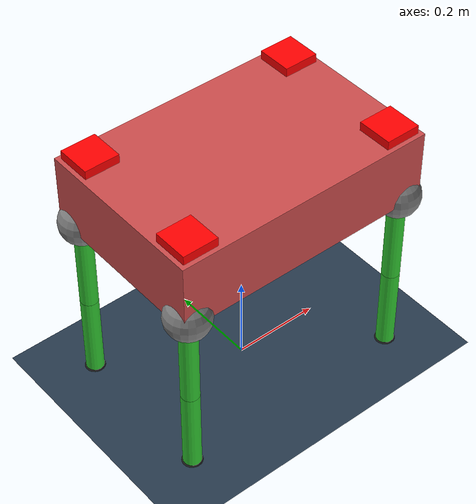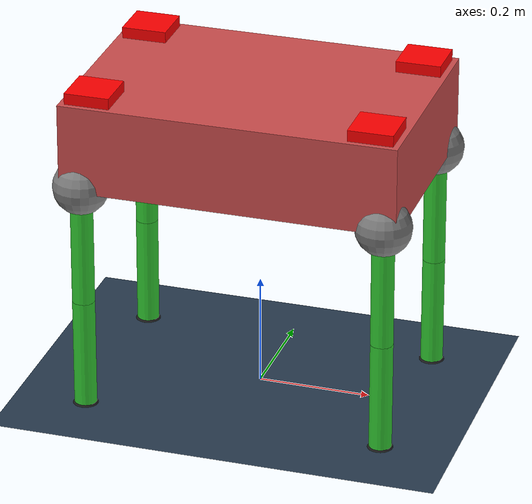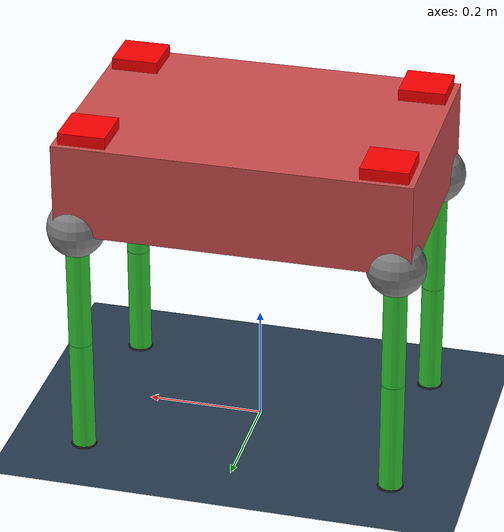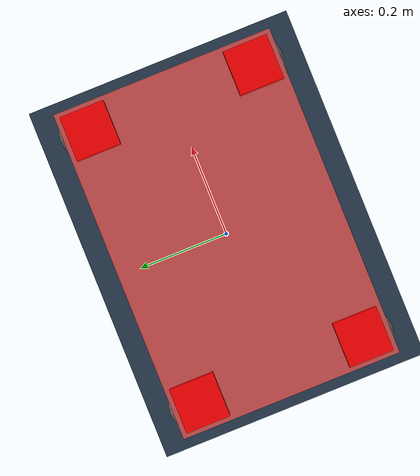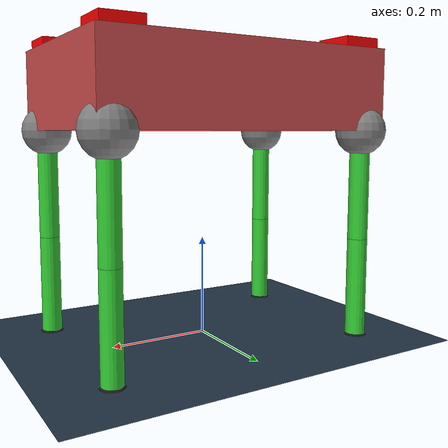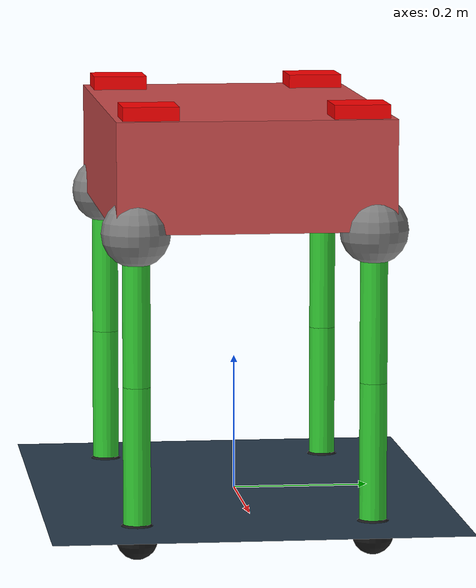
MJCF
<mujoco model="quadruped_with_thrusters">
        <compiler angle="degree" coordinate="local" inertiafromgeom="true"/>

        <option timestep="0.001" iterations="50" solver="Newton" tolerance="1e-10"/>

        <default>
            <joint damping="0.5" armature="0.01"/>
            <geom contype="1" conaffinity="1" condim="3" friction="1.0 0.005 0.0001"/>
        </default>

        <asset>
            <texture type="skybox" builtin="gradient" rgb1="0.3 0.5 0.7" rgb2="0 0 0" width="512" height="512"/>
            <texture name="texplane" type="2d" builtin="checker" rgb1="0.2 0.3 0.4" rgb2="0.1 0.15 0.2" width="512" height="512" mark="cross" markrgb="0.8 0.8 0.8"/>
            <material name="matplane" reflectance="0.3" texture="texplane" texrepeat="1 1" texuniform="true"/>
        </asset>

        <worldbody>
            <geom name="floor" pos="0 0 0" size="0 0 0.05" type="plane" material="matplane" condim="3"/>
            <light directional="true" diffuse="0.4 0.4 0.4" specular="0.1 0.1 0.1" pos="0 0 5.0" dir="0 0 -1" castshadow="false"/>
            <light directional="true" diffuse="0.6 0.6 0.6" specular="0.2 0.2 0.2" pos="0 0 4" dir="0 0 -1"/>

            <!-- ===== MAIN BODY (TORSO) ===== -->
            <body name="torso" pos="0 0 0.5">
                <freejoint name="joint_0"/>
                <inertial pos="0 0 0" mass="5.0" diaginertia="0.1 0.1 0.05"/>
                <geom name="torso_geom" type="box" size="0.3 0.2 0.08" rgba="0.8 0.3 0.3 1" mass="5.0"/>

                <!-- Thruster sites at four corners -->
                <site name="fl_thruster_site" pos="0.25 0.15 0.08" size="0.04 0.04 0.02" type="box" rgba="1 0 0 1"/>
                <site name="fr_thruster_site" pos="0.25 -0.15 0.08" size="0.04 0.04 0.02" type="box" rgba="1 0 0 1"/>
                <site name="hl_thruster_site" pos="-0.25 0.15 0.08" size="0.04 0.04 0.02" type="box" rgba="1 0 0 1"/>
                <site name="hr_thruster_site" pos="-0.25 -0.15 0.08" size="0.04 0.04 0.02" type="box" rgba="1 0 0 1"/>

                <!-- ===== FRONT LEFT LEG ===== -->
                <body name="fl_hip" pos="0.27 0.17 -0.08">
                    <joint name="fl_hip_joint" type="hinge" axis="0 0 1" range="-0.5 0.5" damping="1.0"/>
                    <geom type="sphere" size="0.05" rgba="0.5 0.5 0.5 1" mass="0.5"/>

                    <body name="fl_thigh" pos="0 0 0">
                        <joint name="fl_thigh_joint" type="hinge" axis="0 1 0" range="-120 120" damping="1.0"/>
                        <geom type="capsule" fromto="0 0 0 0 0 -0.22" size="0.02" mass="1.0" rgba="0.2 0.8 0.2 1"/>

                        <body name="fl_shank" pos="0 0 -0.22">
                            <joint name="fl_shank_joint" type="hinge" axis="0 1 0" range="-120 120" damping="1.0"/>
                            <geom type="capsule" fromto="0 0 0 0 0 -0.22" size="0.02" mass="1.0" rgba="0.2 0.8 0.2 1"/>

                            <!-- Normal foot (sphere) -->
                            <body name="fl_foot" pos="0 0 -0.22">
                                <geom name="fl_foot_geom" type="sphere" size="0.03" rgba="0.1 0.1 0.1 1" friction="1.5 0.005 0.0001"/>
                                <site name="fl_foot_site" pos="0 0 0" size="0.02"/>
                            </body>
                        </body>
                    </body>
                </body>

                <!-- ===== FRONT RIGHT LEG ===== -->
                <body name="fr_hip" pos="0.27 -0.17 -0.08">
                    <joint name="fr_hip_joint" type="hinge" axis="0 0 1" range="-0.5 0.5" damping="1.0"/>
                    <geom type="sphere" size="0.05" rgba="0.5 0.5 0.5 1" mass="0.5"/>

                    <body name="fr_thigh" pos="0 0 0">
                        <joint name="fr_thigh_joint" type="hinge" axis="0 1 0" range="-120 120" damping="1.0"/>
                        <geom type="capsule" fromto="0 0 0 0 0 -0.22" size="0.02" mass="1.0" rgba="0.2 0.8 0.2 1"/>

                        <body name="fr_shank" pos="0 0 -0.22">
                            <joint name="fr_shank_joint" type="hinge" axis="0 1 0" range="-120 120" damping="1.0"/>
                            <geom type="capsule" fromto="0 0 0 0 0 -0.22" size="0.02" mass="1.0" rgba="0.2 0.8 0.2 1"/>

                            <!-- Normal foot (sphere) -->
                            <body name="fr_foot" pos="0 0 -0.22">
                                <geom name="fr_foot_geom" type="sphere" size="0.03" rgba="0.1 0.1 0.1 1" friction="1.5 0.005 0.0001"/>
                                <site name="fr_foot_site" pos="0 0 0" size="0.02"/>
                            </body>
                        </body>
                    </body>
                </body>

                <!-- ===== HIND LEFT LEG ===== -->
                <body name="hl_hip" pos="-0.27 0.17 -0.08">
                    <joint name="hl_hip_joint" type="hinge" axis="0 0 1" range="-0.5 0.5" damping="1.0"/>
                    <geom type="sphere" size="0.05" rgba="0.5 0.5 0.5 1" mass="0.5"/>

                    <body name="hl_thigh" pos="0 0 0">
                        <joint name="hl_thigh_joint" type="hinge" axis="0 1 0" range="-120 120" damping="1.0"/>
                        <geom type="capsule" fromto="0 0 0 0 0 -0.22" size="0.02" mass="1.0" rgba="0.2 0.8 0.2 1"/>

                        <body name="hl_shank" pos="0 0 -0.22">
                            <joint name="hl_shank_joint" type="hinge" axis="0 1 0" range="-120 120" damping="1.0"/>
                            <geom type="capsule" fromto="0 0 0 0 0 -0.22" size="0.02" mass="1.0" rgba="0.2 0.8 0.2 1"/>

                            <!-- Normal foot (sphere) -->
                            <body name="hl_foot" pos="0 0 -0.22">
                                <geom name="hl_foot_geom" type="sphere" size="0.03" rgba="0.1 0.1 0.1 1" friction="1.5 0.005 0.0001"/>
                                <site name="hl_foot_site" pos="0 0 0" size="0.02"/>
                            </body>
                        </body>
                    </body>
                </body>

                <!-- ===== HIND RIGHT LEG ===== -->
                <body name="hr_hip" pos="-0.27 -0.17 -0.08">
                    <joint name="hr_hip_joint" type="hinge" axis="0 0 1" range="-0.5 0.5" damping="1.0"/>
                    <geom type="sphere" size="0.05" rgba="0.5 0.5 0.5 1" mass="0.5"/>

                    <body name="hr_thigh" pos="0 0 0">
                        <joint name="hr_thigh_joint" type="hinge" axis="0 1 0" range="-120 120" damping="1.0"/>
                        <geom type="capsule" fromto="0 0 0 0 0 -0.22" size="0.02" mass="1.0" rgba="0.2 0.8 0.2 1"/>

                        <body name="hr_shank" pos="0 0 -0.22">
                            <joint name="hr_shank_joint" type="hinge" axis="0 1 0" range="-120 120" damping="1.0"/>
                            <geom type="capsule" fromto="0 0 0 0 0 -0.22" size="0.02" mass="1.0" rgba="0.2 0.8 0.2 1"/>

                            <!-- Normal foot (sphere) -->
                            <body name="hr_foot" pos="0 0 -0.22">
                                <geom name="hr_foot_geom" type="sphere" size="0.03" rgba="0.1 0.1 0.1 1" friction="1.5 0.005 0.0001"/>
                                <site name="hr_foot_site" pos="0 0 0" size="0.02"/>
                            </body>
                        </body>
                    </body>
                </body>
            </body>
        </worldbody>

        <actuator>
            <!-- Leg joint actuators (position control) -->
            <position name="fl_hip_act" joint="fl_hip_joint" kp="50" ctrlrange="-0.5 0.5"/>
            <position name="fl_thigh_act" joint="fl_thigh_joint" kp="50" ctrlrange="-2.0944 2.0944"/>
            <position name="fl_shank_act" joint="fl_shank_joint" kp="50" ctrlrange="-2.0944 2.0944"/>

            <position name="fr_hip_act" joint="fr_hip_joint" kp="50" ctrlrange="-0.5 0.5"/>
            <position name="fr_thigh_act" joint="fr_thigh_joint" kp="50" ctrlrange="-2.0944 2.0944"/>
            <position name="fr_shank_act" joint="fr_shank_joint" kp="50" ctrlrange="-2.0944 2.0944"/>

            <position name="hl_hip_act" joint="hl_hip_joint" kp="50" ctrlrange="-0.5 0.5"/>
            <position name="hl_thigh_act" joint="hl_thigh_joint" kp="50" ctrlrange="-2.0944 2.0944"/>
            <position name="hl_shank_act" joint="hl_shank_joint" kp="50" ctrlrange="-2.0944 2.0944"/>

            <position name="hr_hip_act" joint="hr_hip_joint" kp="50" ctrlrange="-0.5 0.5"/>
            <position name="hr_thigh_act" joint="hr_thigh_joint" kp="50" ctrlrange="-2.0944 2.0944"/>
            <position name="hr_shank_act" joint="hr_shank_joint" kp="50" ctrlrange="-2.0944 2.0944"/>

            <!-- Thruster actuators (force control) -->
            <general name="fl_thruster" site="fl_thruster_site" gear="0 0 1 0 0 0" forcerange="0 200" ctrlrange="0 200"/>
            <general name="fr_thruster" site="fr_thruster_site" gear="0 0 1 0 0 0" forcerange="0 200" ctrlrange="0 200"/>
            <general name="hl_thruster" site="hl_thruster_site" gear="0 0 1 0 0 0" forcerange="0 200" ctrlrange="0 200"/>
            <general name="hr_thruster" site="hr_thruster_site" gear="0 0 1 0 0 0" forcerange="0 200" ctrlrange="0 200"/>
        </actuator>
    </mujoco>
